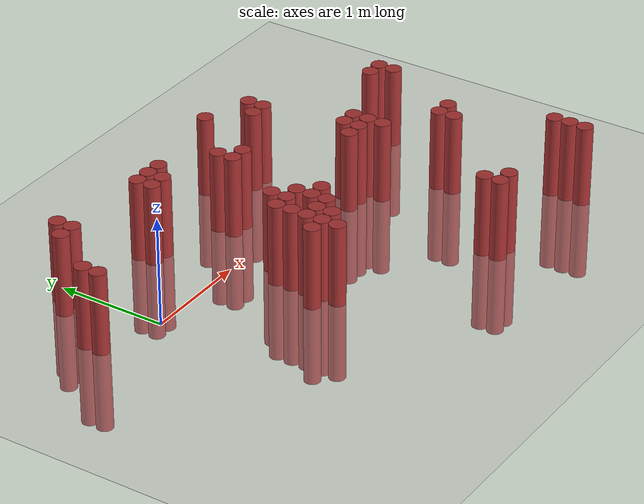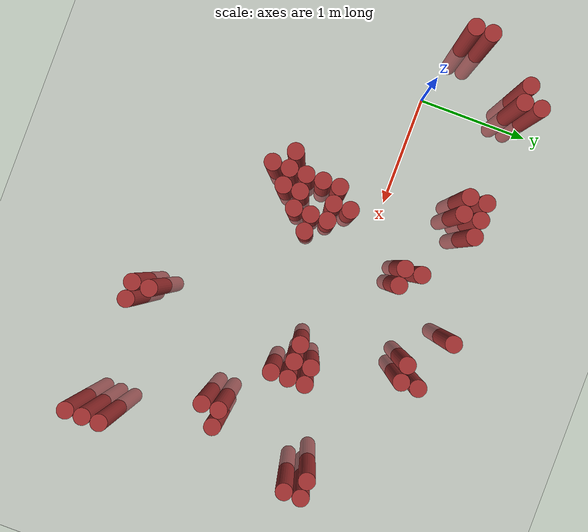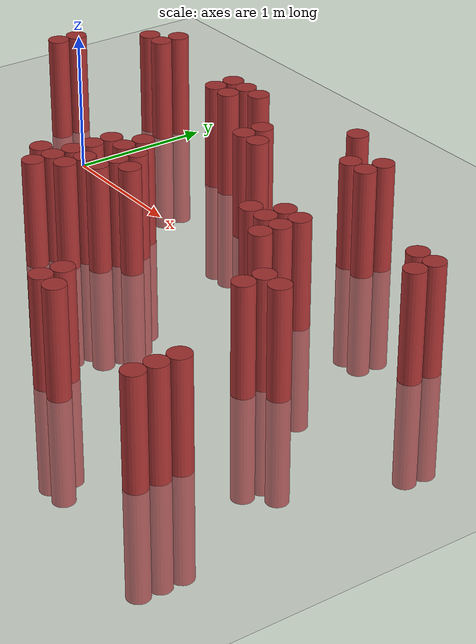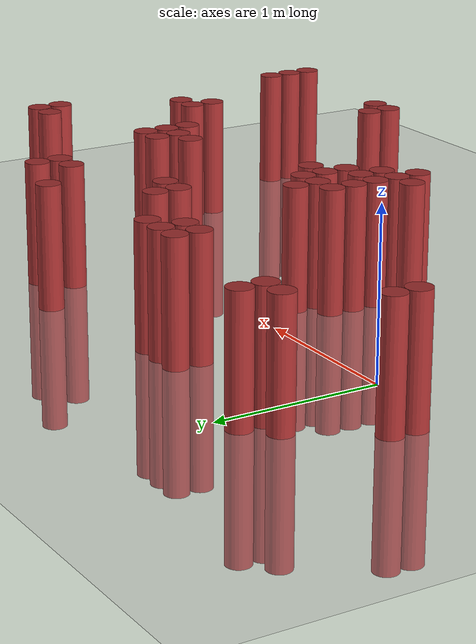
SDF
<sdf version="1.6">
 <world name="default">
  <model name="ground_plane">
   <static>1</static>
   <link name="link">
    <collision name="collision">
     <geometry><plane><normal>0 0 1</normal><size>100 100</size></plane></geometry>
     <surface><friction><ode><mu>100</mu><mu2>50</mu2></ode></friction></surface>
    </collision>
    <visual name="visual">
     <cast_shadows>0</cast_shadows>
     <geometry><plane><normal>0 0 1</normal><size>100 100</size></plane></geometry>
     <material>
      <script><uri>file://media/materials/scripts/gazebo.material</uri><name>Gazebo/Grey</name></script>
     </material>
    </visual>
   </link>
  </model>
  <model name="unit_cylinder_327">
   <static>1</static>
   <pose>-0.575000 0.175000 0.000000 0.000000 0.000000 0.000000</pose>
   <link name="link">
    <inertial>
     <mass>1</mass>
     <inertia><ixx>0.145833</ixx><ixy>0</ixy><ixz>0</ixz><iyy>0.145833</iyy><iyz>0</iyz><izz>0.125</izz></inertia>
    </inertial>
    <collision name="collision">
     <geometry><cylinder><radius>0.075000</radius><length>1.5</length></cylinder></geometry>
    </collision>
    <visual name="visual">
     <geometry><cylinder><radius>0.075000</radius><length>1.5</length></cylinder></geometry>
     <material>
      <ambient>0.648000 0.192000 0.192000 1</ambient>
      <diffuse>0.648000 0.192000 0.192000 1</diffuse>
     </material>
     <material>
      <script><name>Gazebo/Grey</name><uri>file://media/materials/scripts/gazebo.material</uri></script>
     </material>
    </visual>
   </link>
  </model>
  <model name="unit_cylinder_328">
   <static>1</static>
   <pose>-0.575000 0.325000 0.000000 0.000000 0.000000 0.000000</pose>
   <link name="link">
    <inertial>
     <mass>1</mass>
     <inertia><ixx>0.145833</ixx><ixy>0</ixy><ixz>0</ixz><iyy>0.145833</iyy><iyz>0</iyz><izz>0.125</izz></inertia>
    </inertial>
    <collision name="collision">
     <geometry><cylinder><radius>0.075000</radius><length>1.5</length></cylinder></geometry>
    </collision>
    <visual name="visual">
     <geometry><cylinder><radius>0.075000</radius><length>1.5</length></cylinder></geometry>
     <material>
      <ambient>0.648000 0.192000 0.192000 1</ambient>
      <diffuse>0.648000 0.192000 0.192000 1</diffuse>
     </material>
     <material>
      <script><name>Gazebo/Grey</name><uri>file://media/materials/scripts/gazebo.material</uri></script>
     </material>
    </visual>
   </link>
  </model>
  <model name="unit_cylinder_329">
   <static>1</static>
   <pose>-0.275000 0.775000 0.000000 0.000000 0.000000 0.000000</pose>
   <link name="link">
    <inertial>
     <mass>1</mass>
     <inertia><ixx>0.145833</ixx><ixy>0</ixy><ixz>0</ixz><iyy>0.145833</iyy><iyz>0</iyz><izz>0.125</izz></inertia>
    </inertial>
    <collision name="collision">
     <geometry><cylinder><radius>0.075000</radius><length>1.5</length></cylinder></geometry>
    </collision>
    <visual name="visual">
     <geometry><cylinder><radius>0.075000</radius><length>1.5</length></cylinder></geometry>
     <material>
      <ambient>0.648000 0.192000 0.192000 1</ambient>
      <diffuse>0.648000 0.192000 0.192000 1</diffuse>
     </material>
     <material>
      <script><name>Gazebo/Grey</name><uri>file://media/materials/scripts/gazebo.material</uri></script>
     </material>
    </visual>
   </link>
  </model>
  <model name="unit_cylinder_331">
   <static>1</static>
   <pose>-0.125000 0.775000 0.000000 0.000000 0.000000 0.000000</pose>
   <link name="link">
    <inertial>
     <mass>1</mass>
     <inertia><ixx>0.145833</ixx><ixy>0</ixy><ixz>0</ixz><iyy>0.145833</iyy><iyz>0</iyz><izz>0.125</izz></inertia>
    </inertial>
    <collision name="collision">
     <geometry><cylinder><radius>0.075000</radius><length>1.5</length></cylinder></geometry>
    </collision>
    <visual name="visual">
     <geometry><cylinder><radius>0.075000</radius><length>1.5</length></cylinder></geometry>
     <material>
      <ambient>0.648000 0.192000 0.192000 1</ambient>
      <diffuse>0.648000 0.192000 0.192000 1</diffuse>
     </material>
     <material>
      <script><name>Gazebo/Grey</name><uri>file://media/materials/scripts/gazebo.material</uri></script>
     </material>
    </visual>
   </link>
  </model>
  <model name="unit_cylinder_332">
   <static>1</static>
   <pose>-0.125000 0.925000 0.000000 0.000000 0.000000 0.000000</pose>
   <link name="link">
    <inertial>
     <mass>1</mass>
     <inertia><ixx>0.145833</ixx><ixy>0</ixy><ixz>0</ixz><iyy>0.145833</iyy><iyz>0</iyz><izz>0.125</izz></inertia>
    </inertial>
    <collision name="collision">
     <geometry><cylinder><radius>0.075000</radius><length>1.5</length></cylinder></geometry>
    </collision>
    <visual name="visual">
     <geometry><cylinder><radius>0.075000</radius><length>1.5</length></cylinder></geometry>
     <material>
      <ambient>0.648000 0.192000 0.192000 1</ambient>
      <diffuse>0.648000 0.192000 0.192000 1</diffuse>
     </material>
     <material>
      <script><name>Gazebo/Grey</name><uri>file://media/materials/scripts/gazebo.material</uri></script>
     </material>
    </visual>
   </link>
  </model>
  <model name="unit_cylinder_346">
   <static>1</static>
   <pose>0.775000 0.625000 0.000000 0.000000 0.000000 0.000000</pose>
   <link name="link">
    <inertial>
     <mass>1</mass>
     <inertia><ixx>0.145833</ixx><ixy>0</ixy><ixz>0</ixz><iyy>0.145833</iyy><iyz>0</iyz><izz>0.125</izz></inertia>
    </inertial>
    <collision name="collision">
     <geometry><cylinder><radius>0.075000</radius><length>1.5</length></cylinder></geometry>
    </collision>
    <visual name="visual">
     <geometry><cylinder><radius>0.075000</radius><length>1.5</length></cylinder></geometry>
     <material>
      <ambient>0.648000 0.192000 0.192000 1</ambient>
      <diffuse>0.648000 0.192000 0.192000 1</diffuse>
     </material>
     <material>
      <script><name>Gazebo/Grey</name><uri>file://media/materials/scripts/gazebo.material</uri></script>
     </material>
    </visual>
   </link>
  </model>
  <model name="unit_cylinder_347">
   <static>1</static>
   <pose>0.775000 0.775000 0.000000 0.000000 0.000000 0.000000</pose>
   <link name="link">
    <inertial>
     <mass>1</mass>
     <inertia><ixx>0.145833</ixx><ixy>0</ixy><ixz>0</ixz><iyy>0.145833</iyy><iyz>0</iyz><izz>0.125</izz></inertia>
    </inertial>
    <collision name="collision">
     <geometry><cylinder><radius>0.075000</radius><length>1.5</length></cylinder></geometry>
    </collision>
    <visual name="visual">
     <geometry><cylinder><radius>0.075000</radius><length>1.5</length></cylinder></geometry>
     <material>
      <ambient>0.648000 0.192000 0.192000 1</ambient>
      <diffuse>0.648000 0.192000 0.192000 1</diffuse>
     </material>
     <material>
      <script><name>Gazebo/Grey</name><uri>file://media/materials/scripts/gazebo.material</uri></script>
     </material>
    </visual>
   </link>
  </model>
  <model name="unit_cylinder_356">
   <static>1</static>
   <pose>0.925000 -0.875000 0.000000 0.000000 0.000000 0.000000</pose>
   <link name="link">
    <inertial>
     <mass>1</mass>
     <inertia><ixx>0.145833</ixx><ixy>0</ixy><ixz>0</ixz><iyy>0.145833</iyy><iyz>0</iyz><izz>0.125</izz></inertia>
    </inertial>
    <collision name="collision">
     <geometry><cylinder><radius>0.075000</radius><length>1.5</length></cylinder></geometry>
    </collision>
    <visual name="visual">
     <geometry><cylinder><radius>0.075000</radius><length>1.5</length></cylinder></geometry>
     <material>
      <ambient>0.648000 0.192000 0.192000 1</ambient>
      <diffuse>0.648000 0.192000 0.192000 1</diffuse>
     </material>
     <material>
      <script><name>Gazebo/Grey</name><uri>file://media/materials/scripts/gazebo.material</uri></script>
     </material>
    </visual>
   </link>
  </model>
  <model name="unit_cylinder_357">
   <static>1</static>
   <pose>0.925000 0.625000 0.000000 0.000000 0.000000 0.000000</pose>
   <link name="link">
    <inertial>
     <mass>1</mass>
     <inertia><ixx>0.145833</ixx><ixy>0</ixy><ixz>0</ixz><iyy>0.145833</iyy><iyz>0</iyz><izz>0.125</izz></inertia>
    </inertial>
    <collision name="collision">
     <geometry><cylinder><radius>0.075000</radius><length>1.5</length></cylinder></geometry>
    </collision>
    <visual name="visual">
     <geometry><cylinder><radius>0.075000</radius><length>1.5</length></cylinder></geometry>
     <material>
      <ambient>0.648000 0.192000 0.192000 1</ambient>
      <diffuse>0.648000 0.192000 0.192000 1</diffuse>
     </material>
     <material>
      <script><name>Gazebo/Grey</name><uri>file://media/materials/scripts/gazebo.material</uri></script>
     </material>
    </visual>
   </link>
  </model>
  <model name="unit_cylinder_358">
   <static>1</static>
   <pose>0.925000 0.775000 0.000000 0.000000 0.000000 0.000000</pose>
   <link name="link">
    <inertial>
     <mass>1</mass>
     <inertia><ixx>0.145833</ixx><ixy>0</ixy><ixz>0</ixz><iyy>0.145833</iyy><iyz>0</iyz><izz>0.125</izz></inertia>
    </inertial>
    <collision name="collision">
     <geometry><cylinder><radius>0.075000</radius><length>1.5</length></cylinder></geometry>
    </collision>
    <visual name="visual">
     <geometry><cylinder><radius>0.075000</radius><length>1.5</length></cylinder></geometry>
     <material>
      <ambient>0.648000 0.192000 0.192000 1</ambient>
      <diffuse>0.648000 0.192000 0.192000 1</diffuse>
     </material>
     <material>
      <script><name>Gazebo/Grey</name><uri>file://media/materials/scripts/gazebo.material</uri></script>
     </material>
    </visual>
   </link>
  </model>
  <model name="unit_cylinder_367">
   <static>1</static>
   <pose>1.075000 -1.025000 0.000000 0.000000 0.000000 0.000000</pose>
   <link name="link">
    <inertial>
     <mass>1</mass>
     <inertia><ixx>0.145833</ixx><ixy>0</ixy><ixz>0</ixz><iyy>0.145833</iyy><iyz>0</iyz><izz>0.125</izz></inertia>
    </inertial>
    <collision name="collision">
     <geometry><cylinder><radius>0.075000</radius><length>1.5</length></cylinder></geometry>
    </collision>
    <visual name="visual">
     <geometry><cylinder><radius>0.075000</radius><length>1.5</length></cylinder></geometry>
     <material>
      <ambient>0.648000 0.192000 0.192000 1</ambient>
      <diffuse>0.648000 0.192000 0.192000 1</diffuse>
     </material>
     <material>
      <script><name>Gazebo/Grey</name><uri>file://media/materials/scripts/gazebo.material</uri></script>
     </material>
    </visual>
   </link>
  </model>
  <model name="unit_cylinder_368">
   <static>1</static>
   <pose>1.075000 -0.875000 0.000000 0.000000 0.000000 0.000000</pose>
   <link name="link">
    <inertial>
     <mass>1</mass>
     <inertia><ixx>0.145833</ixx><ixy>0</ixy><ixz>0</ixz><iyy>0.145833</iyy><iyz>0</iyz><izz>0.125</izz></inertia>
    </inertial>
    <collision name="collision">
     <geometry><cylinder><radius>0.075000</radius><length>1.5</length></cylinder></geometry>
    </collision>
    <visual name="visual">
     <geometry><cylinder><radius>0.075000</radius><length>1.5</length></cylinder></geometry>
     <material>
      <ambient>0.648000 0.192000 0.192000 1</ambient>
      <diffuse>0.648000 0.192000 0.192000 1</diffuse>
     </material>
     <material>
      <script><name>Gazebo/Grey</name><uri>file://media/materials/scripts/gazebo.material</uri></script>
     </material>
    </visual>
   </link>
  </model>
  <model name="unit_cylinder_369">
   <static>1</static>
   <pose>1.075000 -0.725000 0.000000 0.000000 0.000000 0.000000</pose>
   <link name="link">
    <inertial>
     <mass>1</mass>
     <inertia><ixx>0.145833</ixx><ixy>0</ixy><ixz>0</ixz><iyy>0.145833</iyy><iyz>0</iyz><izz>0.125</izz></inertia>
    </inertial>
    <collision name="collision">
     <geometry><cylinder><radius>0.075000</radius><length>1.5</length></cylinder></geometry>
    </collision>
    <visual name="visual">
     <geometry><cylinder><radius>0.075000</radius><length>1.5</length></cylinder></geometry>
     <material>
      <ambient>0.648000 0.192000 0.192000 1</ambient>
      <diffuse>0.648000 0.192000 0.192000 1</diffuse>
     </material>
     <material>
      <script><name>Gazebo/Grey</name><uri>file://media/materials/scripts/gazebo.material</uri></script>
     </material>
    </visual>
   </link>
  </model>
  <model name="unit_cylinder_370">
   <static>1</static>
   <pose>1.075000 -0.575000 0.000000 0.000000 0.000000 0.000000</pose>
   <link name="link">
    <inertial>
     <mass>1</mass>
     <inertia><ixx>0.145833</ixx><ixy>0</ixy><ixz>0</ixz><iyy>0.145833</iyy><iyz>0</iyz><izz>0.125</izz></inertia>
    </inertial>
    <collision name="collision">
     <geometry><cylinder><radius>0.075000</radius><length>1.5</length></cylinder></geometry>
    </collision>
    <visual name="visual">
     <geometry><cylinder><radius>0.075000</radius><length>1.5</length></cylinder></geometry>
     <material>
      <ambient>0.648000 0.192000 0.192000 1</ambient>
      <diffuse>0.648000 0.192000 0.192000 1</diffuse>
     </material>
     <material>
      <script><name>Gazebo/Grey</name><uri>file://media/materials/scripts/gazebo.material</uri></script>
     </material>
    </visual>
   </link>
  </model>
  <model name="unit_cylinder_371">
   <static>1</static>
   <pose>1.075000 -0.425000 0.000000 0.000000 0.000000 0.000000</pose>
   <link name="link">
    <inertial>
     <mass>1</mass>
     <inertia><ixx>0.145833</ixx><ixy>0</ixy><ixz>0</ixz><iyy>0.145833</iyy><iyz>0</iyz><izz>0.125</izz></inertia>
    </inertial>
    <collision name="collision">
     <geometry><cylinder><radius>0.075000</radius><length>1.5</length></cylinder></geometry>
    </collision>
    <visual name="visual">
     <geometry><cylinder><radius>0.075000</radius><length>1.5</length></cylinder></geometry>
     <material>
      <ambient>0.648000 0.192000 0.192000 1</ambient>
      <diffuse>0.648000 0.192000 0.192000 1</diffuse>
     </material>
     <material>
      <script><name>Gazebo/Grey</name><uri>file://media/materials/scripts/gazebo.material</uri></script>
     </material>
    </visual>
   </link>
  </model>
  <model name="unit_cylinder_372">
   <static>1</static>
   <pose>1.075000 0.775000 0.000000 0.000000 0.000000 0.000000</pose>
   <link name="link">
    <inertial>
     <mass>1</mass>
     <inertia><ixx>0.145833</ixx><ixy>0</ixy><ixz>0</ixz><iyy>0.145833</iyy><iyz>0</iyz><izz>0.125</izz></inertia>
    </inertial>
    <collision name="collision">
     <geometry><cylinder><radius>0.075000</radius><length>1.5</length></cylinder></geometry>
    </collision>
    <visual name="visual">
     <geometry><cylinder><radius>0.075000</radius><length>1.5</length></cylinder></geometry>
     <material>
      <ambient>0.648000 0.192000 0.192000 1</ambient>
      <diffuse>0.648000 0.192000 0.192000 1</diffuse>
     </material>
     <material>
      <script><name>Gazebo/Grey</name><uri>file://media/materials/scripts/gazebo.material</uri></script>
     </material>
    </visual>
   </link>
  </model>
  <model name="unit_cylinder_379">
   <static>1</static>
   <pose>1.225000 -0.875000 0.000000 0.000000 0.000000 0.000000</pose>
   <link name="link">
    <inertial>
     <mass>1</mass>
     <inertia><ixx>0.145833</ixx><ixy>0</ixy><ixz>0</ixz><iyy>0.145833</iyy><iyz>0</iyz><izz>0.125</izz></inertia>
    </inertial>
    <collision name="collision">
     <geometry><cylinder><radius>0.075000</radius><length>1.5</length></cylinder></geometry>
    </collision>
    <visual name="visual">
     <geometry><cylinder><radius>0.075000</radius><length>1.5</length></cylinder></geometry>
     <material>
      <ambient>0.648000 0.192000 0.192000 1</ambient>
      <diffuse>0.648000 0.192000 0.192000 1</diffuse>
     </material>
     <material>
      <script><name>Gazebo/Grey</name><uri>file://media/materials/scripts/gazebo.material</uri></script>
     </material>
    </visual>
   </link>
  </model>
  <model name="unit_cylinder_380">
   <static>1</static>
   <pose>1.225000 -0.725000 0.000000 0.000000 0.000000 0.000000</pose>
   <link name="link">
    <inertial>
     <mass>1</mass>
     <inertia><ixx>0.145833</ixx><ixy>0</ixy><ixz>0</ixz><iyy>0.145833</iyy><iyz>0</iyz><izz>0.125</izz></inertia>
    </inertial>
    <collision name="collision">
     <geometry><cylinder><radius>0.075000</radius><length>1.5</length></cylinder></geometry>
    </collision>
    <visual name="visual">
     <geometry><cylinder><radius>0.075000</radius><length>1.5</length></cylinder></geometry>
     <material>
      <ambient>0.648000 0.192000 0.192000 1</ambient>
      <diffuse>0.648000 0.192000 0.192000 1</diffuse>
     </material>
     <material>
      <script><name>Gazebo/Grey</name><uri>file://media/materials/scripts/gazebo.material</uri></script>
     </material>
    </visual>
   </link>
  </model>
  <model name="unit_cylinder_381">
   <static>1</static>
   <pose>1.225000 -0.425000 0.000000 0.000000 0.000000 0.000000</pose>
   <link name="link">
    <inertial>
     <mass>1</mass>
     <inertia><ixx>0.145833</ixx><ixy>0</ixy><ixz>0</ixz><iyy>0.145833</iyy><iyz>0</iyz><izz>0.125</izz></inertia>
    </inertial>
    <collision name="collision">
     <geometry><cylinder><radius>0.075000</radius><length>1.5</length></cylinder></geometry>
    </collision>
    <visual name="visual">
     <geometry><cylinder><radius>0.075000</radius><length>1.5</length></cylinder></geometry>
     <material>
      <ambient>0.648000 0.192000 0.192000 1</ambient>
      <diffuse>0.648000 0.192000 0.192000 1</diffuse>
     </material>
     <material>
      <script><name>Gazebo/Grey</name><uri>file://media/materials/scripts/gazebo.material</uri></script>
     </material>
    </visual>
   </link>
  </model>
  <model name="unit_cylinder_382">
   <static>1</static>
   <pose>1.225000 -0.275000 0.000000 0.000000 0.000000 0.000000</pose>
   <link name="link">
    <inertial>
     <mass>1</mass>
     <inertia><ixx>0.145833</ixx><ixy>0</ixy><ixz>0</ixz><iyy>0.145833</iyy><iyz>0</iyz><izz>0.125</izz></inertia>
    </inertial>
    <collision name="collision">
     <geometry><cylinder><radius>0.075000</radius><length>1.5</length></cylinder></geometry>
    </collision>
    <visual name="visual">
     <geometry><cylinder><radius>0.075000</radius><length>1.5</length></cylinder></geometry>
     <material>
      <ambient>0.648000 0.192000 0.192000 1</ambient>
      <diffuse>0.648000 0.192000 0.192000 1</diffuse>
     </material>
     <material>
      <script><name>Gazebo/Grey</name><uri>file://media/materials/scripts/gazebo.material</uri></script>
     </material>
    </visual>
   </link>
  </model>
  <model name="unit_cylinder_389">
   <static>1</static>
   <pose>1.375000 -0.725000 0.000000 0.000000 0.000000 0.000000</pose>
   <link name="link">
    <inertial>
     <mass>1</mass>
     <inertia><ixx>0.145833</ixx><ixy>0</ixy><ixz>0</ixz><iyy>0.145833</iyy><iyz>0</iyz><izz>0.125</izz></inertia>
    </inertial>
    <collision name="collision">
     <geometry><cylinder><radius>0.075000</radius><length>1.5</length></cylinder></geometry>
    </collision>
    <visual name="visual">
     <geometry><cylinder><radius>0.075000</radius><length>1.5</length></cylinder></geometry>
     <material>
      <ambient>0.648000 0.192000 0.192000 1</ambient>
      <diffuse>0.648000 0.192000 0.192000 1</diffuse>
     </material>
     <material>
      <script><name>Gazebo/Grey</name><uri>file://media/materials/scripts/gazebo.material</uri></script>
     </material>
    </visual>
   </link>
  </model>
  <model name="unit_cylinder_390">
   <static>1</static>
   <pose>1.375000 -0.575000 0.000000 0.000000 0.000000 0.000000</pose>
   <link name="link">
    <inertial>
     <mass>1</mass>
     <inertia><ixx>0.145833</ixx><ixy>0</ixy><ixz>0</ixz><iyy>0.145833</iyy><iyz>0</iyz><izz>0.125</izz></inertia>
    </inertial>
    <collision name="collision">
     <geometry><cylinder><radius>0.075000</radius><length>1.5</length></cylinder></geometry>
    </collision>
    <visual name="visual">
     <geometry><cylinder><radius>0.075000</radius><length>1.5</length></cylinder></geometry>
     <material>
      <ambient>0.648000 0.192000 0.192000 1</ambient>
      <diffuse>0.648000 0.192000 0.192000 1</diffuse>
     </material>
     <material>
      <script><name>Gazebo/Grey</name><uri>file://media/materials/scripts/gazebo.material</uri></script>
     </material>
    </visual>
   </link>
  </model>
  <model name="unit_cylinder_391">
   <static>1</static>
   <pose>1.375000 -0.425000 0.000000 0.000000 0.000000 0.000000</pose>
   <link name="link">
    <inertial>
     <mass>1</mass>
     <inertia><ixx>0.145833</ixx><ixy>0</ixy><ixz>0</ixz><iyy>0.145833</iyy><iyz>0</iyz><izz>0.125</izz></inertia>
    </inertial>
    <collision name="collision">
     <geometry><cylinder><radius>0.075000</radius><length>1.5</length></cylinder></geometry>
    </collision>
    <visual name="visual">
     <geometry><cylinder><radius>0.075000</radius><length>1.5</length></cylinder></geometry>
     <material>
      <ambient>0.648000 0.192000 0.192000 1</ambient>
      <diffuse>0.648000 0.192000 0.192000 1</diffuse>
     </material>
     <material>
      <script><name>Gazebo/Grey</name><uri>file://media/materials/scripts/gazebo.material</uri></script>
     </material>
    </visual>
   </link>
  </model>
  <model name="unit_cylinder_400">
   <static>1</static>
   <pose>1.525000 -0.575000 0.000000 0.000000 0.000000 0.000000</pose>
   <link name="link">
    <inertial>
     <mass>1</mass>
     <inertia><ixx>0.145833</ixx><ixy>0</ixy><ixz>0</ixz><iyy>0.145833</iyy><iyz>0</iyz><izz>0.125</izz></inertia>
    </inertial>
    <collision name="collision">
     <geometry><cylinder><radius>0.075000</radius><length>1.5</length></cylinder></geometry>
    </collision>
    <visual name="visual">
     <geometry><cylinder><radius>0.075000</radius><length>1.5</length></cylinder></geometry>
     <material>
      <ambient>0.648000 0.192000 0.192000 1</ambient>
      <diffuse>0.648000 0.192000 0.192000 1</diffuse>
     </material>
     <material>
      <script><name>Gazebo/Grey</name><uri>file://media/materials/scripts/gazebo.material</uri></script>
     </material>
    </visual>
   </link>
  </model>
  <model name="unit_cylinder_401">
   <static>1</static>
   <pose>1.525000 0.325000 0.000000 0.000000 0.000000 0.000000</pose>
   <link name="link">
    <inertial>
     <mass>1</mass>
     <inertia><ixx>0.145833</ixx><ixy>0</ixy><ixz>0</ixz><iyy>0.145833</iyy><iyz>0</iyz><izz>0.125</izz></inertia>
    </inertial>
    <collision name="collision">
     <geometry><cylinder><radius>0.075000</radius><length>1.5</length></cylinder></geometry>
    </collision>
    <visual name="visual">
     <geometry><cylinder><radius>0.075000</radius><length>1.5</length></cylinder></geometry>
     <material>
      <ambient>0.648000 0.192000 0.192000 1</ambient>
      <diffuse>0.648000 0.192000 0.192000 1</diffuse>
     </material>
     <material>
      <script><name>Gazebo/Grey</name><uri>file://media/materials/scripts/gazebo.material</uri></script>
     </material>
    </visual>
   </link>
  </model>
  <model name="unit_cylinder_402">
   <static>1</static>
   <pose>1.525000 0.475000 0.000000 0.000000 0.000000 0.000000</pose>
   <link name="link">
    <inertial>
     <mass>1</mass>
     <inertia><ixx>0.145833</ixx><ixy>0</ixy><ixz>0</ixz><iyy>0.145833</iyy><iyz>0</iyz><izz>0.125</izz></inertia>
    </inertial>
    <collision name="collision">
     <geometry><cylinder><radius>0.075000</radius><length>1.5</length></cylinder></geometry>
    </collision>
    <visual name="visual">
     <geometry><cylinder><radius>0.075000</radius><length>1.5</length></cylinder></geometry>
     <material>
      <ambient>0.648000 0.192000 0.192000 1</ambient>
      <diffuse>0.648000 0.192000 0.192000 1</diffuse>
     </material>
     <material>
      <script><name>Gazebo/Grey</name><uri>file://media/materials/scripts/gazebo.material</uri></script>
     </material>
    </visual>
   </link>
  </model>
  <model name="unit_cylinder_406">
   <static>1</static>
   <pose>1.675000 0.325000 0.000000 0.000000 0.000000 0.000000</pose>
   <link name="link">
    <inertial>
     <mass>1</mass>
     <inertia><ixx>0.145833</ixx><ixy>0</ixy><ixz>0</ixz><iyy>0.145833</iyy><iyz>0</iyz><izz>0.125</izz></inertia>
    </inertial>
    <collision name="collision">
     <geometry><cylinder><radius>0.075000</radius><length>1.5</length></cylinder></geometry>
    </collision>
    <visual name="visual">
     <geometry><cylinder><radius>0.075000</radius><length>1.5</length></cylinder></geometry>
     <material>
      <ambient>0.648000 0.192000 0.192000 1</ambient>
      <diffuse>0.648000 0.192000 0.192000 1</diffuse>
     </material>
     <material>
      <script><name>Gazebo/Grey</name><uri>file://media/materials/scripts/gazebo.material</uri></script>
     </material>
    </visual>
   </link>
  </model>
  <model name="unit_cylinder_416">
   <static>1</static>
   <pose>1.975000 0.925000 0.000000 0.000000 0.000000 0.000000</pose>
   <link name="link">
    <inertial>
     <mass>1</mass>
     <inertia><ixx>0.145833</ixx><ixy>0</ixy><ixz>0</ixz><iyy>0.145833</iyy><iyz>0</iyz><izz>0.125</izz></inertia>
    </inertial>
    <collision name="collision">
     <geometry><cylinder><radius>0.075000</radius><length>1.5</length></cylinder></geometry>
    </collision>
    <visual name="visual">
     <geometry><cylinder><radius>0.075000</radius><length>1.5</length></cylinder></geometry>
     <material>
      <ambient>0.648000 0.192000 0.192000 1</ambient>
      <diffuse>0.648000 0.192000 0.192000 1</diffuse>
     </material>
     <material>
      <script><name>Gazebo/Grey</name><uri>file://media/materials/scripts/gazebo.material</uri></script>
     </material>
    </visual>
   </link>
  </model>
  <model name="unit_cylinder_434">
   <static>1</static>
   <pose>2.275000 0.625000 0.000000 0.000000 0.000000 0.000000</pose>
   <link name="link">
    <inertial>
     <mass>1</mass>
     <inertia><ixx>0.145833</ixx><ixy>0</ixy><ixz>0</ixz><iyy>0.145833</iyy><iyz>0</iyz><izz>0.125</izz></inertia>
    </inertial>
    <collision name="collision">
     <geometry><cylinder><radius>0.075000</radius><length>1.5</length></cylinder></geometry>
    </collision>
    <visual name="visual">
     <geometry><cylinder><radius>0.075000</radius><length>1.5</length></cylinder></geometry>
     <material>
      <ambient>0.648000 0.192000 0.192000 1</ambient>
      <diffuse>0.648000 0.192000 0.192000 1</diffuse>
     </material>
     <material>
      <script><name>Gazebo/Grey</name><uri>file://media/materials/scripts/gazebo.material</uri></script>
     </material>
    </visual>
   </link>
  </model>
  <model name="unit_cylinder_440">
   <static>1</static>
   <pose>2.425000 -1.775000 0.000000 0.000000 0.000000 0.000000</pose>
   <link name="link">
    <inertial>
     <mass>1</mass>
     <inertia><ixx>0.145833</ixx><ixy>0</ixy><ixz>0</ixz><iyy>0.145833</iyy><iyz>0</iyz><izz>0.125</izz></inertia>
    </inertial>
    <collision name="collision">
     <geometry><cylinder><radius>0.075000</radius><length>1.5</length></cylinder></geometry>
    </collision>
    <visual name="visual">
     <geometry><cylinder><radius>0.075000</radius><length>1.5</length></cylinder></geometry>
     <material>
      <ambient>0.648000 0.192000 0.192000 1</ambient>
      <diffuse>0.648000 0.192000 0.192000 1</diffuse>
     </material>
     <material>
      <script><name>Gazebo/Grey</name><uri>file://media/materials/scripts/gazebo.material</uri></script>
     </material>
    </visual>
   </link>
  </model>
  <model name="unit_cylinder_441">
   <static>1</static>
   <pose>2.425000 -1.625000 0.000000 0.000000 0.000000 0.000000</pose>
   <link name="link">
    <inertial>
     <mass>1</mass>
     <inertia><ixx>0.145833</ixx><ixy>0</ixy><ixz>0</ixz><iyy>0.145833</iyy><iyz>0</iyz><izz>0.125</izz></inertia>
    </inertial>
    <collision name="collision">
     <geometry><cylinder><radius>0.075000</radius><length>1.5</length></cylinder></geometry>
    </collision>
    <visual name="visual">
     <geometry><cylinder><radius>0.075000</radius><length>1.5</length></cylinder></geometry>
     <material>
      <ambient>0.648000 0.192000 0.192000 1</ambient>
      <diffuse>0.648000 0.192000 0.192000 1</diffuse>
     </material>
     <material>
      <script><name>Gazebo/Grey</name><uri>file://media/materials/scripts/gazebo.material</uri></script>
     </material>
    </visual>
   </link>
  </model>
  <model name="unit_cylinder_442">
   <static>1</static>
   <pose>2.425000 -0.275000 0.000000 0.000000 0.000000 0.000000</pose>
   <link name="link">
    <inertial>
     <mass>1</mass>
     <inertia><ixx>0.145833</ixx><ixy>0</ixy><ixz>0</ixz><iyy>0.145833</iyy><iyz>0</iyz><izz>0.125</izz></inertia>
    </inertial>
    <collision name="collision">
     <geometry><cylinder><radius>0.075000</radius><length>1.5</length></cylinder></geometry>
    </collision>
    <visual name="visual">
     <geometry><cylinder><radius>0.075000</radius><length>1.5</length></cylinder></geometry>
     <material>
      <ambient>0.648000 0.192000 0.192000 1</ambient>
      <diffuse>0.648000 0.192000 0.192000 1</diffuse>
     </material>
     <material>
      <script><name>Gazebo/Grey</name><uri>file://media/materials/scripts/gazebo.material</uri></script>
     </material>
    </visual>
   </link>
  </model>
  <model name="unit_cylinder_443">
   <static>1</static>
   <pose>2.425000 0.625000 0.000000 0.000000 0.000000 0.000000</pose>
   <link name="link">
    <inertial>
     <mass>1</mass>
     <inertia><ixx>0.145833</ixx><ixy>0</ixy><ixz>0</ixz><iyy>0.145833</iyy><iyz>0</iyz><izz>0.125</izz></inertia>
    </inertial>
    <collision name="collision">
     <geometry><cylinder><radius>0.075000</radius><length>1.5</length></cylinder></geometry>
    </collision>
    <visual name="visual">
     <geometry><cylinder><radius>0.075000</radius><length>1.5</length></cylinder></geometry>
     <material>
      <ambient>0.648000 0.192000 0.192000 1</ambient>
      <diffuse>0.648000 0.192000 0.192000 1</diffuse>
     </material>
     <material>
      <script><name>Gazebo/Grey</name><uri>file://media/materials/scripts/gazebo.material</uri></script>
     </material>
    </visual>
   </link>
  </model>
  <model name="unit_cylinder_444">
   <static>1</static>
   <pose>2.425000 0.775000 0.000000 0.000000 0.000000 0.000000</pose>
   <link name="link">
    <inertial>
     <mass>1</mass>
     <inertia><ixx>0.145833</ixx><ixy>0</ixy><ixz>0</ixz><iyy>0.145833</iyy><iyz>0</iyz><izz>0.125</izz></inertia>
    </inertial>
    <collision name="collision">
     <geometry><cylinder><radius>0.075000</radius><length>1.5</length></cylinder></geometry>
    </collision>
    <visual name="visual">
     <geometry><cylinder><radius>0.075000</radius><length>1.5</length></cylinder></geometry>
     <material>
      <ambient>0.648000 0.192000 0.192000 1</ambient>
      <diffuse>0.648000 0.192000 0.192000 1</diffuse>
     </material>
     <material>
      <script><name>Gazebo/Grey</name><uri>file://media/materials/scripts/gazebo.material</uri></script>
     </material>
    </visual>
   </link>
  </model>
  <model name="unit_cylinder_445">
   <static>1</static>
   <pose>2.575000 -1.775000 0.000000 0.000000 0.000000 0.000000</pose>
   <link name="link">
    <inertial>
     <mass>1</mass>
     <inertia><ixx>0.145833</ixx><ixy>0</ixy><ixz>0</ixz><iyy>0.145833</iyy><iyz>0</iyz><izz>0.125</izz></inertia>
    </inertial>
    <collision name="collision">
     <geometry><cylinder><radius>0.075000</radius><length>1.5</length></cylinder></geometry>
    </collision>
    <visual name="visual">
     <geometry><cylinder><radius>0.075000</radius><length>1.5</length></cylinder></geometry>
     <material>
      <ambient>0.648000 0.192000 0.192000 1</ambient>
      <diffuse>0.648000 0.192000 0.192000 1</diffuse>
     </material>
     <material>
      <script><name>Gazebo/Grey</name><uri>file://media/materials/scripts/gazebo.material</uri></script>
     </material>
    </visual>
   </link>
  </model>
  <model name="unit_cylinder_446">
   <static>1</static>
   <pose>2.575000 -0.275000 0.000000 0.000000 0.000000 0.000000</pose>
   <link name="link">
    <inertial>
     <mass>1</mass>
     <inertia><ixx>0.145833</ixx><ixy>0</ixy><ixz>0</ixz><iyy>0.145833</iyy><iyz>0</iyz><izz>0.125</izz></inertia>
    </inertial>
    <collision name="collision">
     <geometry><cylinder><radius>0.075000</radius><length>1.5</length></cylinder></geometry>
    </collision>
    <visual name="visual">
     <geometry><cylinder><radius>0.075000</radius><length>1.5</length></cylinder></geometry>
     <material>
      <ambient>0.648000 0.192000 0.192000 1</ambient>
      <diffuse>0.648000 0.192000 0.192000 1</diffuse>
     </material>
     <material>
      <script><name>Gazebo/Grey</name><uri>file://media/materials/scripts/gazebo.material</uri></script>
     </material>
    </visual>
   </link>
  </model>
  <model name="unit_cylinder_447">
   <static>1</static>
   <pose>2.575000 -0.125000 0.000000 0.000000 0.000000 0.000000</pose>
   <link name="link">
    <inertial>
     <mass>1</mass>
     <inertia><ixx>0.145833</ixx><ixy>0</ixy><ixz>0</ixz><iyy>0.145833</iyy><iyz>0</iyz><izz>0.125</izz></inertia>
    </inertial>
    <collision name="collision">
     <geometry><cylinder><radius>0.075000</radius><length>1.5</length></cylinder></geometry>
    </collision>
    <visual name="visual">
     <geometry><cylinder><radius>0.075000</radius><length>1.5</length></cylinder></geometry>
     <material>
      <ambient>0.648000 0.192000 0.192000 1</ambient>
      <diffuse>0.648000 0.192000 0.192000 1</diffuse>
     </material>
     <material>
      <script><name>Gazebo/Grey</name><uri>file://media/materials/scripts/gazebo.material</uri></script>
     </material>
    </visual>
   </link>
  </model>
  <model name="unit_cylinder_448">
   <static>1</static>
   <pose>2.725000 -0.425000 0.000000 0.000000 0.000000 0.000000</pose>
   <link name="link">
    <inertial>
     <mass>1</mass>
     <inertia><ixx>0.145833</ixx><ixy>0</ixy><ixz>0</ixz><iyy>0.145833</iyy><iyz>0</iyz><izz>0.125</izz></inertia>
    </inertial>
    <collision name="collision">
     <geometry><cylinder><radius>0.075000</radius><length>1.5</length></cylinder></geometry>
    </collision>
    <visual name="visual">
     <geometry><cylinder><radius>0.075000</radius><length>1.5</length></cylinder></geometry>
     <material>
      <ambient>0.648000 0.192000 0.192000 1</ambient>
      <diffuse>0.648000 0.192000 0.192000 1</diffuse>
     </material>
     <material>
      <script><name>Gazebo/Grey</name><uri>file://media/materials/scripts/gazebo.material</uri></script>
     </material>
    </visual>
   </link>
  </model>
  <model name="unit_cylinder_449">
   <static>1</static>
   <pose>2.725000 -0.275000 0.000000 0.000000 0.000000 0.000000</pose>
   <link name="link">
    <inertial>
     <mass>1</mass>
     <inertia><ixx>0.145833</ixx><ixy>0</ixy><ixz>0</ixz><iyy>0.145833</iyy><iyz>0</iyz><izz>0.125</izz></inertia>
    </inertial>
    <collision name="collision">
     <geometry><cylinder><radius>0.075000</radius><length>1.5</length></cylinder></geometry>
    </collision>
    <visual name="visual">
     <geometry><cylinder><radius>0.075000</radius><length>1.5</length></cylinder></geometry>
     <material>
      <ambient>0.648000 0.192000 0.192000 1</ambient>
      <diffuse>0.648000 0.192000 0.192000 1</diffuse>
     </material>
     <material>
      <script><name>Gazebo/Grey</name><uri>file://media/materials/scripts/gazebo.material</uri></script>
     </material>
    </visual>
   </link>
  </model>
  <model name="unit_cylinder_450">
   <static>1</static>
   <pose>2.725000 -0.125000 0.000000 0.000000 0.000000 0.000000</pose>
   <link name="link">
    <inertial>
     <mass>1</mass>
     <inertia><ixx>0.145833</ixx><ixy>0</ixy><ixz>0</ixz><iyy>0.145833</iyy><iyz>0</iyz><izz>0.125</izz></inertia>
    </inertial>
    <collision name="collision">
     <geometry><cylinder><radius>0.075000</radius><length>1.5</length></cylinder></geometry>
    </collision>
    <visual name="visual">
     <geometry><cylinder><radius>0.075000</radius><length>1.5</length></cylinder></geometry>
     <material>
      <ambient>0.648000 0.192000 0.192000 1</ambient>
      <diffuse>0.648000 0.192000 0.192000 1</diffuse>
     </material>
     <material>
      <script><name>Gazebo/Grey</name><uri>file://media/materials/scripts/gazebo.material</uri></script>
     </material>
    </visual>
   </link>
  </model>
  <model name="unit_cylinder_451">
   <static>1</static>
   <pose>3.175000 -0.875000 0.000000 0.000000 0.000000 0.000000</pose>
   <link name="link">
    <inertial>
     <mass>1</mass>
     <inertia><ixx>0.145833</ixx><ixy>0</ixy><ixz>0</ixz><iyy>0.145833</iyy><iyz>0</iyz><izz>0.125</izz></inertia>
    </inertial>
    <collision name="collision">
     <geometry><cylinder><radius>0.075000</radius><length>1.5</length></cylinder></geometry>
    </collision>
    <visual name="visual">
     <geometry><cylinder><radius>0.075000</radius><length>1.5</length></cylinder></geometry>
     <material>
      <ambient>0.648000 0.192000 0.192000 1</ambient>
      <diffuse>0.648000 0.192000 0.192000 1</diffuse>
     </material>
     <material>
      <script><name>Gazebo/Grey</name><uri>file://media/materials/scripts/gazebo.material</uri></script>
     </material>
    </visual>
   </link>
  </model>
  <model name="unit_cylinder_452">
   <static>1</static>
   <pose>3.175000 -0.725000 0.000000 0.000000 0.000000 0.000000</pose>
   <link name="link">
    <inertial>
     <mass>1</mass>
     <inertia><ixx>0.145833</ixx><ixy>0</ixy><ixz>0</ixz><iyy>0.145833</iyy><iyz>0</iyz><izz>0.125</izz></inertia>
    </inertial>
    <collision name="collision">
     <geometry><cylinder><radius>0.075000</radius><length>1.5</length></cylinder></geometry>
    </collision>
    <visual name="visual">
     <geometry><cylinder><radius>0.075000</radius><length>1.5</length></cylinder></geometry>
     <material>
      <ambient>0.648000 0.192000 0.192000 1</ambient>
      <diffuse>0.648000 0.192000 0.192000 1</diffuse>
     </material>
     <material>
      <script><name>Gazebo/Grey</name><uri>file://media/materials/scripts/gazebo.material</uri></script>
     </material>
    </visual>
   </link>
  </model>
  <model name="unit_cylinder_454">
   <static>1</static>
   <pose>3.325000 -0.725000 0.000000 0.000000 0.000000 0.000000</pose>
   <link name="link">
    <inertial>
     <mass>1</mass>
     <inertia><ixx>0.145833</ixx><ixy>0</ixy><ixz>0</ixz><iyy>0.145833</iyy><iyz>0</iyz><izz>0.125</izz></inertia>
    </inertial>
    <collision name="collision">
     <geometry><cylinder><radius>0.075000</radius><length>1.5</length></cylinder></geometry>
    </collision>
    <visual name="visual">
     <geometry><cylinder><radius>0.075000</radius><length>1.5</length></cylinder></geometry>
     <material>
      <ambient>0.648000 0.192000 0.192000 1</ambient>
      <diffuse>0.648000 0.192000 0.192000 1</diffuse>
     </material>
     <material>
      <script><name>Gazebo/Grey</name><uri>file://media/materials/scripts/gazebo.material</uri></script>
     </material>
    </visual>
   </link>
  </model>
  <model name="unit_cylinder_458">
   <static>1</static>
   <pose>3.475000 0.175000 0.000000 0.000000 0.000000 0.000000</pose>
   <link name="link">
    <inertial>
     <mass>1</mass>
     <inertia><ixx>0.145833</ixx><ixy>0</ixy><ixz>0</ixz><iyy>0.145833</iyy><iyz>0</iyz><izz>0.125</izz></inertia>
    </inertial>
    <collision name="collision">
     <geometry><cylinder><radius>0.075000</radius><length>1.5</length></cylinder></geometry>
    </collision>
    <visual name="visual">
     <geometry><cylinder><radius>0.075000</radius><length>1.5</length></cylinder></geometry>
     <material>
      <ambient>0.648000 0.192000 0.192000 1</ambient>
      <diffuse>0.648000 0.192000 0.192000 1</diffuse>
     </material>
     <material>
      <script><name>Gazebo/Grey</name><uri>file://media/materials/scripts/gazebo.material</uri></script>
     </material>
    </visual>
   </link>
  </model>
  <model name="unit_cylinder_465">
   <static>1</static>
   <pose>3.625000 -1.925000 0.000000 0.000000 0.000000 0.000000</pose>
   <link name="link">
    <inertial>
     <mass>1</mass>
     <inertia><ixx>0.145833</ixx><ixy>0</ixy><ixz>0</ixz><iyy>0.145833</iyy><iyz>0</iyz><izz>0.125</izz></inertia>
    </inertial>
    <collision name="collision">
     <geometry><cylinder><radius>0.075000</radius><length>1.5</length></cylinder></geometry>
    </collision>
    <visual name="visual">
     <geometry><cylinder><radius>0.075000</radius><length>1.5</length></cylinder></geometry>
     <material>
      <ambient>0.648000 0.192000 0.192000 1</ambient>
      <diffuse>0.648000 0.192000 0.192000 1</diffuse>
     </material>
     <material>
      <script><name>Gazebo/Grey</name><uri>file://media/materials/scripts/gazebo.material</uri></script>
     </material>
    </visual>
   </link>
  </model>
  <model name="unit_cylinder_466">
   <static>1</static>
   <pose>3.625000 -1.775000 0.000000 0.000000 0.000000 0.000000</pose>
   <link name="link">
    <inertial>
     <mass>1</mass>
     <inertia><ixx>0.145833</ixx><ixy>0</ixy><ixz>0</ixz><iyy>0.145833</iyy><iyz>0</iyz><izz>0.125</izz></inertia>
    </inertial>
    <collision name="collision">
     <geometry><cylinder><radius>0.075000</radius><length>1.5</length></cylinder></geometry>
    </collision>
    <visual name="visual">
     <geometry><cylinder><radius>0.075000</radius><length>1.5</length></cylinder></geometry>
     <material>
      <ambient>0.648000 0.192000 0.192000 1</ambient>
      <diffuse>0.648000 0.192000 0.192000 1</diffuse>
     </material>
     <material>
      <script><name>Gazebo/Grey</name><uri>file://media/materials/scripts/gazebo.material</uri></script>
     </material>
    </visual>
   </link>
  </model>
  <model name="unit_cylinder_467">
   <static>1</static>
   <pose>3.625000 -1.625000 0.000000 0.000000 0.000000 0.000000</pose>
   <link name="link">
    <inertial>
     <mass>1</mass>
     <inertia><ixx>0.145833</ixx><ixy>0</ixy><ixz>0</ixz><iyy>0.145833</iyy><iyz>0</iyz><izz>0.125</izz></inertia>
    </inertial>
    <collision name="collision">
     <geometry><cylinder><radius>0.075000</radius><length>1.5</length></cylinder></geometry>
    </collision>
    <visual name="visual">
     <geometry><cylinder><radius>0.075000</radius><length>1.5</length></cylinder></geometry>
     <material>
      <ambient>0.648000 0.192000 0.192000 1</ambient>
      <diffuse>0.648000 0.192000 0.192000 1</diffuse>
     </material>
     <material>
      <script><name>Gazebo/Grey</name><uri>file://media/materials/scripts/gazebo.material</uri></script>
     </material>
    </visual>
   </link>
  </model>
  <model name="unit_cylinder_468">
   <static>1</static>
   <pose>3.625000 0.025000 0.000000 0.000000 0.000000 0.000000</pose>
   <link name="link">
    <inertial>
     <mass>1</mass>
     <inertia><ixx>0.145833</ixx><ixy>0</ixy><ixz>0</ixz><iyy>0.145833</iyy><iyz>0</iyz><izz>0.125</izz></inertia>
    </inertial>
    <collision name="collision">
     <geometry><cylinder><radius>0.075000</radius><length>1.5</length></cylinder></geometry>
    </collision>
    <visual name="visual">
     <geometry><cylinder><radius>0.075000</radius><length>1.5</length></cylinder></geometry>
     <material>
      <ambient>0.648000 0.192000 0.192000 1</ambient>
      <diffuse>0.648000 0.192000 0.192000 1</diffuse>
     </material>
     <material>
      <script><name>Gazebo/Grey</name><uri>file://media/materials/scripts/gazebo.material</uri></script>
     </material>
    </visual>
   </link>
  </model>
  <model name="unit_cylinder_469">
   <static>1</static>
   <pose>3.625000 0.175000 0.000000 0.000000 0.000000 0.000000</pose>
   <link name="link">
    <inertial>
     <mass>1</mass>
     <inertia><ixx>0.145833</ixx><ixy>0</ixy><ixz>0</ixz><iyy>0.145833</iyy><iyz>0</iyz><izz>0.125</izz></inertia>
    </inertial>
    <collision name="collision">
     <geometry><cylinder><radius>0.075000</radius><length>1.5</length></cylinder></geometry>
    </collision>
    <visual name="visual">
     <geometry><cylinder><radius>0.075000</radius><length>1.5</length></cylinder></geometry>
     <material>
      <ambient>0.648000 0.192000 0.192000 1</ambient>
      <diffuse>0.648000 0.192000 0.192000 1</diffuse>
     </material>
     <material>
      <script><name>Gazebo/Grey</name><uri>file://media/materials/scripts/gazebo.material</uri></script>
     </material>
    </visual>
   </link>
  </model>
 </world>
</sdf>
